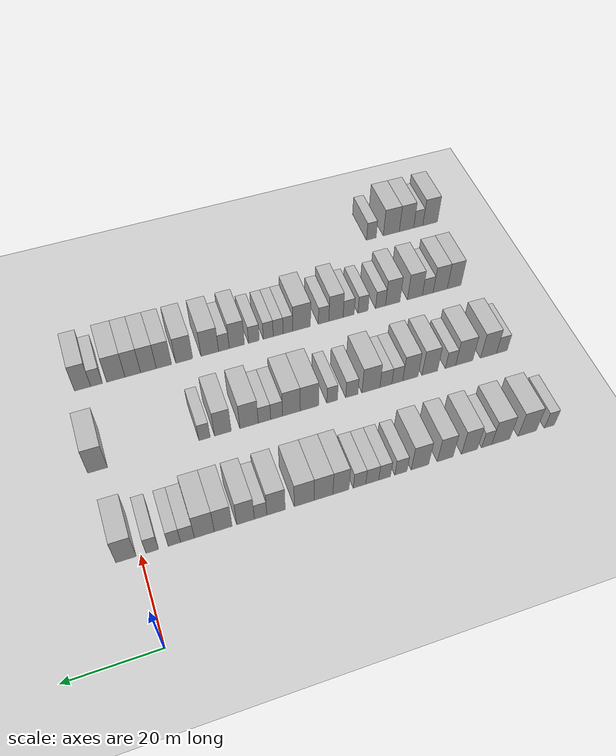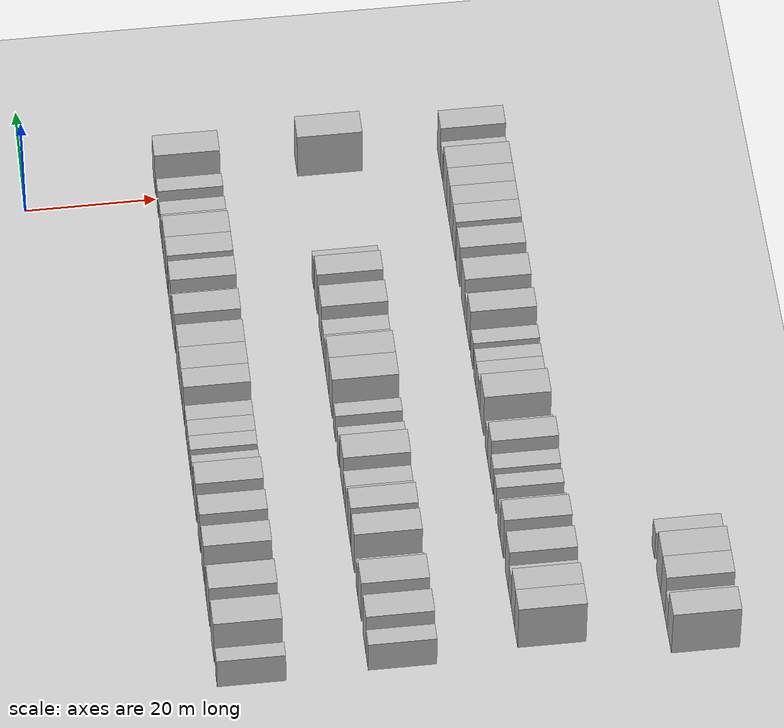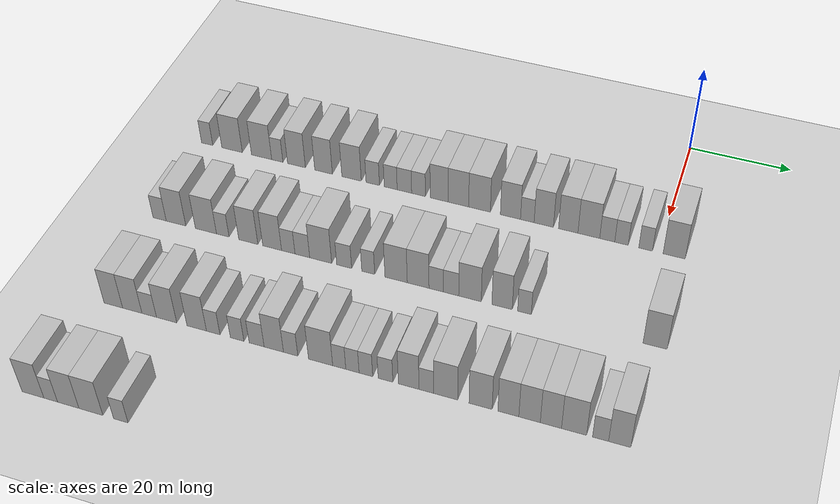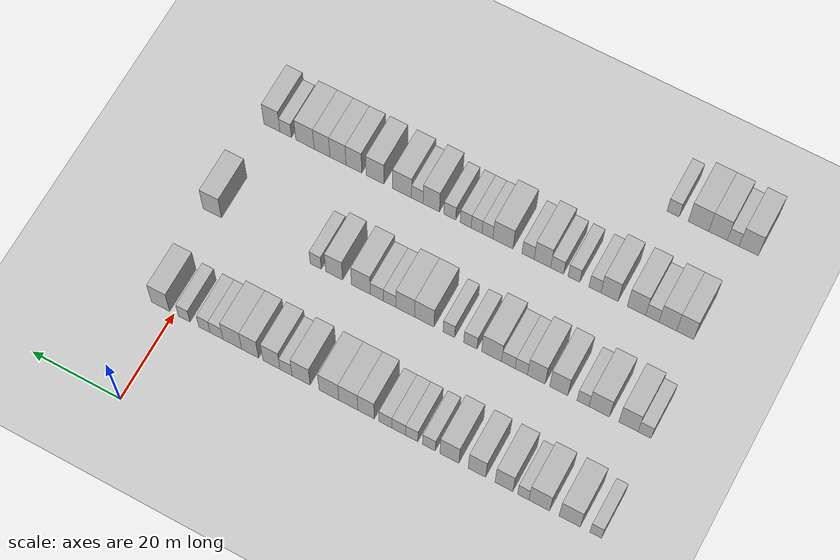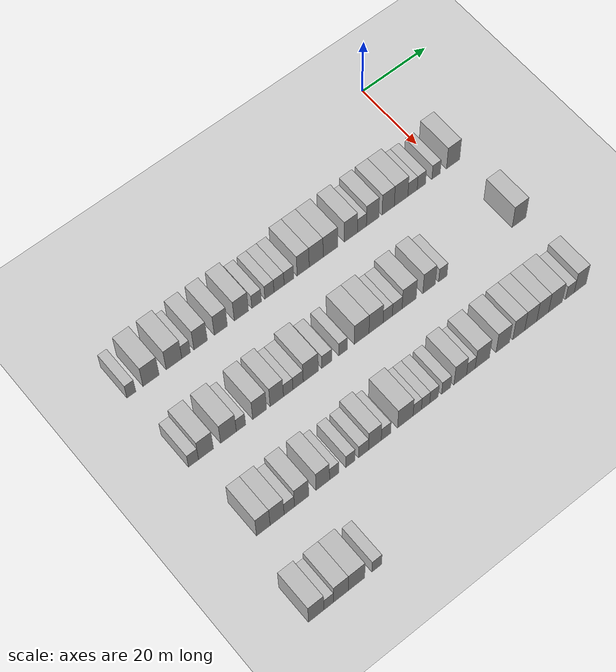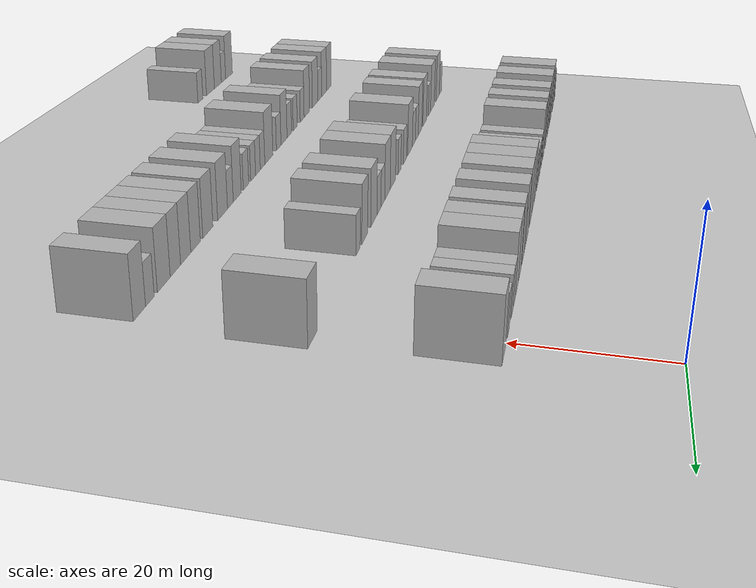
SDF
<sdf version="1.6">
 <world name="default">
  <include><name>ground_plane_1</name><uri>model://HANNAS_ground_plane</uri></include>
  <model name="building_72">
   <static>1</static>
   <pose>25.0000 -92.2614 0 0.000000 0.000000 0.000000</pose>
   <link name="link">
    <pose>0 0 3.00 0 0 0</pose>
    <collision name="collision"><geometry><box><size>10.0000 2.4693 6.0000</size></box></geometry></collision>
    <visual name="visual">
     <cast_shadows>0</cast_shadows>
     <geometry><box><size>10.0000 2.4693 6.0000</size></box></geometry>
     <material>
      <script>
       <uri>model://HANNAS_wall/materials/scripts</uri>
       <uri>model://HANNAS_wall/materials/textures</uri>
       <name>vrc/HANNAS_wall</name>
      </script>
     </material>
    </visual>
   </link>
  </model>
  <model name="building_73">
   <static>1</static>
   <pose>25.0000 -86.7779 0 0.000000 0.000000 0.000000</pose>
   <link name="link">
    <pose>0 0 4.50 0 0 0</pose>
    <collision name="collision"><geometry><box><size>10.0000 4.4978 9.0000</size></box></geometry></collision>
    <visual name="visual">
     <cast_shadows>0</cast_shadows>
     <geometry><box><size>10.0000 4.4978 9.0000</size></box></geometry>
     <material>
      <script>
       <uri>model://HANNAS_wall/materials/scripts</uri>
       <uri>model://HANNAS_wall/materials/textures</uri>
       <name>vrc/HANNAS_wall</name>
      </script>
     </material>
    </visual>
   </link>
  </model>
  <model name="building_74">
   <static>1</static>
   <pose>25.0000 -80.3340 0 0.000000 0.000000 0.000000</pose>
   <link name="link">
    <pose>0 0 4.50 0 0 0</pose>
    <collision name="collision"><geometry><box><size>10.0000 4.3899 9.0000</size></box></geometry></collision>
    <visual name="visual">
     <cast_shadows>0</cast_shadows>
     <geometry><box><size>10.0000 4.3899 9.0000</size></box></geometry>
     <material>
      <script>
       <uri>model://HANNAS_wall/materials/scripts</uri>
       <uri>model://HANNAS_wall/materials/textures</uri>
       <name>vrc/HANNAS_wall</name>
      </script>
     </material>
    </visual>
   </link>
  </model>
  <model name="building_75">
   <static>1</static>
   <pose>25.0000 -76.9279 0 0.000000 0.000000 0.000000</pose>
   <link name="link">
    <pose>0 0 3.00 0 0 0</pose>
    <collision name="collision"><geometry><box><size>10.0000 2.4223 6.0000</size></box></geometry></collision>
    <visual name="visual">
     <cast_shadows>0</cast_shadows>
     <geometry><box><size>10.0000 2.4223 6.0000</size></box></geometry>
     <material>
      <script>
       <uri>model://HANNAS_wall/materials/scripts</uri>
       <uri>model://HANNAS_wall/materials/textures</uri>
       <name>vrc/HANNAS_wall</name>
      </script>
     </material>
    </visual>
   </link>
  </model>
  <model name="building_76">
   <static>1</static>
   <pose>25.0000 -72.8050 0 0.000000 0.000000 0.000000</pose>
   <link name="link">
    <pose>0 0 4.50 0 0 0</pose>
    <collision name="collision"><geometry><box><size>10.0000 3.8236 9.0000</size></box></geometry></collision>
    <visual name="visual">
     <cast_shadows>0</cast_shadows>
     <geometry><box><size>10.0000 3.8236 9.0000</size></box></geometry>
     <material>
      <script>
       <uri>model://HANNAS_wall/materials/scripts</uri>
       <uri>model://HANNAS_wall/materials/textures</uri>
       <name>vrc/HANNAS_wall</name>
      </script>
     </material>
    </visual>
   </link>
  </model>
  <model name="building_77">
   <static>1</static>
   <pose>25.0000 -67.0223 0 0.000000 0.000000 0.000000</pose>
   <link name="link">
    <pose>0 0 4.50 0 0 0</pose>
    <collision name="collision"><geometry><box><size>10.0000 3.7419 9.0000</size></box></geometry></collision>
    <visual name="visual">
     <cast_shadows>0</cast_shadows>
     <geometry><box><size>10.0000 3.7419 9.0000</size></box></geometry>
     <material>
      <script>
       <uri>model://HANNAS_wall/materials/scripts</uri>
       <uri>model://HANNAS_wall/materials/textures</uri>
       <name>vrc/HANNAS_wall</name>
      </script>
     </material>
    </visual>
   </link>
  </model>
  <model name="building_78">
   <static>1</static>
   <pose>25.0000 -61.1075 0 0.000000 0.000000 0.000000</pose>
   <link name="link">
    <pose>0 0 4.50 0 0 0</pose>
    <collision name="collision"><geometry><box><size>10.0000 4.0876 9.0000</size></box></geometry></collision>
    <visual name="visual">
     <cast_shadows>0</cast_shadows>
     <geometry><box><size>10.0000 4.0876 9.0000</size></box></geometry>
     <material>
      <script>
       <uri>model://HANNAS_wall/materials/scripts</uri>
       <uri>model://HANNAS_wall/materials/textures</uri>
       <name>vrc/HANNAS_wall</name>
      </script>
     </material>
    </visual>
   </link>
  </model>
  <model name="building_79">
   <static>1</static>
   <pose>25.0000 -56.6667 0 0.000000 0.000000 0.000000</pose>
   <link name="link">
    <pose>0 0 3.00 0 0 0</pose>
    <collision name="collision"><geometry><box><size>10.0000 2.7940 6.0000</size></box></geometry></collision>
    <visual name="visual">
     <cast_shadows>0</cast_shadows>
     <geometry><box><size>10.0000 2.7940 6.0000</size></box></geometry>
     <material>
      <script>
       <uri>model://HANNAS_wall/materials/scripts</uri>
       <uri>model://HANNAS_wall/materials/textures</uri>
       <name>vrc/HANNAS_wall</name>
      </script>
     </material>
    </visual>
   </link>
  </model>
  <model name="building_80">
   <static>1</static>
   <pose>25.0000 -52.9333 0 0.000000 0.000000 0.000000</pose>
   <link name="link">
    <pose>0 0 3.00 0 0 0</pose>
    <collision name="collision"><geometry><box><size>10.0000 2.6727 6.0000</size></box></geometry></collision>
    <visual name="visual">
     <cast_shadows>0</cast_shadows>
     <geometry><box><size>10.0000 2.6727 6.0000</size></box></geometry>
     <material>
      <script>
       <uri>model://HANNAS_wall/materials/scripts</uri>
       <uri>model://HANNAS_wall/materials/textures</uri>
       <name>vrc/HANNAS_wall</name>
      </script>
     </material>
    </visual>
   </link>
  </model>
  <model name="building_81">
   <static>1</static>
   <pose>25.0000 -50.1034 0 0.000000 0.000000 0.000000</pose>
   <link name="link">
    <pose>0 0 3.00 0 0 0</pose>
    <collision name="collision"><geometry><box><size>10.0000 2.9871 6.0000</size></box></geometry></collision>
    <visual name="visual">
     <cast_shadows>0</cast_shadows>
     <geometry><box><size>10.0000 2.9871 6.0000</size></box></geometry>
     <material>
      <script>
       <uri>model://HANNAS_wall/materials/scripts</uri>
       <uri>model://HANNAS_wall/materials/textures</uri>
       <name>vrc/HANNAS_wall</name>
      </script>
     </material>
    </visual>
   </link>
  </model>
  <model name="building_82">
   <static>1</static>
   <pose>25.0000 -47.1950 0 0.000000 0.000000 0.000000</pose>
   <link name="link">
    <pose>0 0 3.00 0 0 0</pose>
    <collision name="collision"><geometry><box><size>10.0000 2.8297 6.0000</size></box></geometry></collision>
    <visual name="visual">
     <cast_shadows>0</cast_shadows>
     <geometry><box><size>10.0000 2.8297 6.0000</size></box></geometry>
     <material>
      <script>
       <uri>model://HANNAS_wall/materials/scripts</uri>
       <uri>model://HANNAS_wall/materials/textures</uri>
       <name>vrc/HANNAS_wall</name>
      </script>
     </material>
    </visual>
   </link>
  </model>
  <model name="building_83">
   <static>1</static>
   <pose>25.0000 -42.9795 0 0.000000 0.000000 0.000000</pose>
   <link name="link">
    <pose>0 0 4.50 0 0 0</pose>
    <collision name="collision"><geometry><box><size>10.0000 3.6011 9.0000</size></box></geometry></collision>
    <visual name="visual">
     <cast_shadows>0</cast_shadows>
     <geometry><box><size>10.0000 3.6011 9.0000</size></box></geometry>
     <material>
      <script>
       <uri>model://HANNAS_wall/materials/scripts</uri>
       <uri>model://HANNAS_wall/materials/textures</uri>
       <name>vrc/HANNAS_wall</name>
      </script>
     </material>
    </visual>
   </link>
  </model>
  <model name="building_84">
   <static>1</static>
   <pose>25.0000 -39.0826 0 0.000000 0.000000 0.000000</pose>
   <link name="link">
    <pose>0 0 4.50 0 0 0</pose>
    <collision name="collision"><geometry><box><size>10.0000 4.1928 9.0000</size></box></geometry></collision>
    <visual name="visual">
     <cast_shadows>0</cast_shadows>
     <geometry><box><size>10.0000 4.1928 9.0000</size></box></geometry>
     <material>
      <script>
       <uri>model://HANNAS_wall/materials/scripts</uri>
       <uri>model://HANNAS_wall/materials/textures</uri>
       <name>vrc/HANNAS_wall</name>
      </script>
     </material>
    </visual>
   </link>
  </model>
  <model name="building_85">
   <static>1</static>
   <pose>25.0000 -34.8034 0 0.000000 0.000000 0.000000</pose>
   <link name="link">
    <pose>0 0 4.50 0 0 0</pose>
    <collision name="collision"><geometry><box><size>10.0000 4.3656 9.0000</size></box></geometry></collision>
    <visual name="visual">
     <cast_shadows>0</cast_shadows>
     <geometry><box><size>10.0000 4.3656 9.0000</size></box></geometry>
     <material>
      <script>
       <uri>model://HANNAS_wall/materials/scripts</uri>
       <uri>model://HANNAS_wall/materials/textures</uri>
       <name>vrc/HANNAS_wall</name>
      </script>
     </material>
    </visual>
   </link>
  </model>
  <model name="building_86">
   <static>1</static>
   <pose>25.0000 -28.6227 0 0.000000 0.000000 0.000000</pose>
   <link name="link">
    <pose>0 0 4.50 0 0 0</pose>
    <collision name="collision"><geometry><box><size>10.0000 3.9956 9.0000</size></box></geometry></collision>
    <visual name="visual">
     <cast_shadows>0</cast_shadows>
     <geometry><box><size>10.0000 3.9956 9.0000</size></box></geometry>
     <material>
      <script>
       <uri>model://HANNAS_wall/materials/scripts</uri>
       <uri>model://HANNAS_wall/materials/textures</uri>
       <name>vrc/HANNAS_wall</name>
      </script>
     </material>
    </visual>
   </link>
  </model>
  <model name="building_87">
   <static>1</static>
   <pose>25.0000 -25.2805 0 0.000000 0.000000 0.000000</pose>
   <link name="link">
    <pose>0 0 3.00 0 0 0</pose>
    <collision name="collision"><geometry><box><size>10.0000 2.6889 6.0000</size></box></geometry></collision>
    <visual name="visual">
     <cast_shadows>0</cast_shadows>
     <geometry><box><size>10.0000 2.6889 6.0000</size></box></geometry>
     <material>
      <script>
       <uri>model://HANNAS_wall/materials/scripts</uri>
       <uri>model://HANNAS_wall/materials/textures</uri>
       <name>vrc/HANNAS_wall</name>
      </script>
     </material>
    </visual>
   </link>
  </model>
  <model name="building_88">
   <static>1</static>
   <pose>25.0000 -22.0371 0 0.000000 0.000000 0.000000</pose>
   <link name="link">
    <pose>0 0 4.50 0 0 0</pose>
    <collision name="collision"><geometry><box><size>10.0000 3.7979 9.0000</size></box></geometry></collision>
    <visual name="visual">
     <cast_shadows>0</cast_shadows>
     <geometry><box><size>10.0000 3.7979 9.0000</size></box></geometry>
     <material>
      <script>
       <uri>model://HANNAS_wall/materials/scripts</uri>
       <uri>model://HANNAS_wall/materials/textures</uri>
       <name>vrc/HANNAS_wall</name>
      </script>
     </material>
    </visual>
   </link>
  </model>
  <model name="building_89">
   <static>1</static>
   <pose>25.0000 -17.2486 0 0.000000 0.000000 0.000000</pose>
   <link name="link">
    <pose>0 0 4.50 0 0 0</pose>
    <collision name="collision"><geometry><box><size>10.0000 3.7790 9.0000</size></box></geometry></collision>
    <visual name="visual">
     <cast_shadows>0</cast_shadows>
     <geometry><box><size>10.0000 3.7790 9.0000</size></box></geometry>
     <material>
      <script>
       <uri>model://HANNAS_wall/materials/scripts</uri>
       <uri>model://HANNAS_wall/materials/textures</uri>
       <name>vrc/HANNAS_wall</name>
      </script>
     </material>
    </visual>
   </link>
  </model>
  <model name="building_90">
   <static>1</static>
   <pose>25.0000 -13.2496 0 0.000000 0.000000 0.000000</pose>
   <link name="link">
    <pose>0 0 4.50 0 0 0</pose>
    <collision name="collision"><geometry><box><size>10.0000 4.2191 9.0000</size></box></geometry></collision>
    <visual name="visual">
     <cast_shadows>0</cast_shadows>
     <geometry><box><size>10.0000 4.2191 9.0000</size></box></geometry>
     <material>
      <script>
       <uri>model://HANNAS_wall/materials/scripts</uri>
       <uri>model://HANNAS_wall/materials/textures</uri>
       <name>vrc/HANNAS_wall</name>
      </script>
     </material>
    </visual>
   </link>
  </model>
  <model name="building_91">
   <static>1</static>
   <pose>25.0000 -9.6932 0 0.000000 0.000000 0.000000</pose>
   <link name="link">
    <pose>0 0 3.00 0 0 0</pose>
    <collision name="collision"><geometry><box><size>10.0000 2.8937 6.0000</size></box></geometry></collision>
    <visual name="visual">
     <cast_shadows>0</cast_shadows>
     <geometry><box><size>10.0000 2.8937 6.0000</size></box></geometry>
     <material>
      <script>
       <uri>model://HANNAS_wall/materials/scripts</uri>
       <uri>model://HANNAS_wall/materials/textures</uri>
       <name>vrc/HANNAS_wall</name>
      </script>
     </material>
    </visual>
   </link>
  </model>
  <model name="building_92">
   <static>1</static>
   <pose>25.0000 -6.9539 0 0.000000 0.000000 0.000000</pose>
   <link name="link">
    <pose>0 0 3.00 0 0 0</pose>
    <collision name="collision"><geometry><box><size>10.0000 2.5847 6.0000</size></box></geometry></collision>
    <visual name="visual">
     <cast_shadows>0</cast_shadows>
     <geometry><box><size>10.0000 2.5847 6.0000</size></box></geometry>
     <material>
      <script>
       <uri>model://HANNAS_wall/materials/scripts</uri>
       <uri>model://HANNAS_wall/materials/textures</uri>
       <name>vrc/HANNAS_wall</name>
      </script>
     </material>
    </visual>
   </link>
  </model>
  <model name="building_93">
   <static>1</static>
   <pose>25.0000 -2.3545 0 0.000000 0.000000 0.000000</pose>
   <link name="link">
    <pose>0 0 3.00 0 0 0</pose>
    <collision name="collision"><geometry><box><size>10.0000 2.6142 6.0000</size></box></geometry></collision>
    <visual name="visual">
     <cast_shadows>0</cast_shadows>
     <geometry><box><size>10.0000 2.6142 6.0000</size></box></geometry>
     <material>
      <script>
       <uri>model://HANNAS_wall/materials/scripts</uri>
       <uri>model://HANNAS_wall/materials/textures</uri>
       <name>vrc/HANNAS_wall</name>
      </script>
     </material>
    </visual>
   </link>
  </model>
  <model name="building_94">
   <static>1</static>
   <pose>25.0000 3.0317 0 0.000000 0.000000 0.000000</pose>
   <link name="link">
    <pose>0 0 4.50 0 0 0</pose>
    <collision name="collision"><geometry><box><size>10.0000 4.1583 9.0000</size></box></geometry></collision>
    <visual name="visual">
     <cast_shadows>0</cast_shadows>
     <geometry><box><size>10.0000 4.1583 9.0000</size></box></geometry>
     <material>
      <script>
       <uri>model://HANNAS_wall/materials/scripts</uri>
       <uri>model://HANNAS_wall/materials/textures</uri>
       <name>vrc/HANNAS_wall</name>
      </script>
     </material>
    </visual>
   </link>
  </model>
  <model name="building_269">
   <static>1</static>
   <pose>47.0000 -91.6093 0 0.000000 0.000000 0.000000</pose>
   <link name="link">
    <pose>0 0 3.00 0 0 0</pose>
    <collision name="collision"><geometry><box><size>10.0000 2.7777 6.0000</size></box></geometry></collision>
    <visual name="visual">
     <cast_shadows>0</cast_shadows>
     <geometry><box><size>10.0000 2.7777 6.0000</size></box></geometry>
     <material>
      <script>
       <uri>model://HANNAS_wall/materials/scripts</uri>
       <uri>model://HANNAS_wall/materials/textures</uri>
       <name>vrc/HANNAS_wall</name>
      </script>
     </material>
    </visual>
   </link>
  </model>
  <model name="building_270">
   <static>1</static>
   <pose>47.0000 -88.1638 0 0.000000 0.000000 0.000000</pose>
   <link name="link">
    <pose>0 0 4.50 0 0 0</pose>
    <collision name="collision"><geometry><box><size>10.0000 4.1133 9.0000</size></box></geometry></collision>
    <visual name="visual">
     <cast_shadows>0</cast_shadows>
     <geometry><box><size>10.0000 4.1133 9.0000</size></box></geometry>
     <material>
      <script>
       <uri>model://HANNAS_wall/materials/scripts</uri>
       <uri>model://HANNAS_wall/materials/textures</uri>
       <name>vrc/HANNAS_wall</name>
      </script>
     </material>
    </visual>
   </link>
  </model>
  <model name="building_271">
   <static>1</static>
   <pose>47.0000 -81.9119 0 0.000000 0.000000 0.000000</pose>
   <link name="link">
    <pose>0 0 4.50 0 0 0</pose>
    <collision name="collision"><geometry><box><size>10.0000 4.3905 9.0000</size></box></geometry></collision>
    <visual name="visual">
     <cast_shadows>0</cast_shadows>
     <geometry><box><size>10.0000 4.3905 9.0000</size></box></geometry>
     <material>
      <script>
       <uri>model://HANNAS_wall/materials/scripts</uri>
       <uri>model://HANNAS_wall/materials/textures</uri>
       <name>vrc/HANNAS_wall</name>
      </script>
     </material>
    </visual>
   </link>
  </model>
  <model name="building_272">
   <static>1</static>
   <pose>47.0000 -78.4185 0 0.000000 0.000000 0.000000</pose>
   <link name="link">
    <pose>0 0 3.00 0 0 0</pose>
    <collision name="collision"><geometry><box><size>10.0000 2.5963 6.0000</size></box></geometry></collision>
    <visual name="visual">
     <cast_shadows>0</cast_shadows>
     <geometry><box><size>10.0000 2.5963 6.0000</size></box></geometry>
     <material>
      <script>
       <uri>model://HANNAS_wall/materials/scripts</uri>
       <uri>model://HANNAS_wall/materials/textures</uri>
       <name>vrc/HANNAS_wall</name>
      </script>
     </material>
    </visual>
   </link>
  </model>
  <model name="building_273">
   <static>1</static>
   <pose>47.0000 -73.1669 0 0.000000 0.000000 0.000000</pose>
   <link name="link">
    <pose>0 0 4.50 0 0 0</pose>
    <collision name="collision"><geometry><box><size>10.0000 3.9067 9.0000</size></box></geometry></collision>
    <visual name="visual">
     <cast_shadows>0</cast_shadows>
     <geometry><box><size>10.0000 3.9067 9.0000</size></box></geometry>
     <material>
      <script>
       <uri>model://HANNAS_wall/materials/scripts</uri>
       <uri>model://HANNAS_wall/materials/textures</uri>
       <name>vrc/HANNAS_wall</name>
      </script>
     </material>
    </visual>
   </link>
  </model>
  <model name="building_274">
   <static>1</static>
   <pose>47.0000 -68.3071 0 0.000000 0.000000 0.000000</pose>
   <link name="link">
    <pose>0 0 4.50 0 0 0</pose>
    <collision name="collision"><geometry><box><size>10.0000 3.8128 9.0000</size></box></geometry></collision>
    <visual name="visual">
     <cast_shadows>0</cast_shadows>
     <geometry><box><size>10.0000 3.8128 9.0000</size></box></geometry>
     <material>
      <script>
       <uri>model://HANNAS_wall/materials/scripts</uri>
       <uri>model://HANNAS_wall/materials/textures</uri>
       <name>vrc/HANNAS_wall</name>
      </script>
     </material>
    </visual>
   </link>
  </model>
  <model name="building_275">
   <static>1</static>
   <pose>47.0000 -65.0478 0 0.000000 0.000000 0.000000</pose>
   <link name="link">
    <pose>0 0 3.00 0 0 0</pose>
    <collision name="collision"><geometry><box><size>10.0000 2.7058 6.0000</size></box></geometry></collision>
    <visual name="visual">
     <cast_shadows>0</cast_shadows>
     <geometry><box><size>10.0000 2.7058 6.0000</size></box></geometry>
     <material>
      <script>
       <uri>model://HANNAS_wall/materials/scripts</uri>
       <uri>model://HANNAS_wall/materials/textures</uri>
       <name>vrc/HANNAS_wall</name>
      </script>
     </material>
    </visual>
   </link>
  </model>
  <model name="building_276">
   <static>1</static>
   <pose>47.0000 -62.2211 0 0.000000 0.000000 0.000000</pose>
   <link name="link">
    <pose>0 0 3.00 0 0 0</pose>
    <collision name="collision"><geometry><box><size>10.0000 2.9476 6.0000</size></box></geometry></collision>
    <visual name="visual">
     <cast_shadows>0</cast_shadows>
     <geometry><box><size>10.0000 2.9476 6.0000</size></box></geometry>
     <material>
      <script>
       <uri>model://HANNAS_wall/materials/scripts</uri>
       <uri>model://HANNAS_wall/materials/textures</uri>
       <name>vrc/HANNAS_wall</name>
      </script>
     </material>
    </visual>
   </link>
  </model>
  <model name="building_277">
   <static>1</static>
   <pose>47.0000 -58.5557 0 0.000000 0.000000 0.000000</pose>
   <link name="link">
    <pose>0 0 4.50 0 0 0</pose>
    <collision name="collision"><geometry><box><size>10.0000 4.3833 9.0000</size></box></geometry></collision>
    <visual name="visual">
     <cast_shadows>0</cast_shadows>
     <geometry><box><size>10.0000 4.3833 9.0000</size></box></geometry>
     <material>
      <script>
       <uri>model://HANNAS_wall/materials/scripts</uri>
       <uri>model://HANNAS_wall/materials/textures</uri>
       <name>vrc/HANNAS_wall</name>
      </script>
     </material>
    </visual>
   </link>
  </model>
  <model name="building_278">
   <static>1</static>
   <pose>47.0000 -53.8904 0 0.000000 0.000000 0.000000</pose>
   <link name="link">
    <pose>0 0 3.00 0 0 0</pose>
    <collision name="collision"><geometry><box><size>10.0000 2.9473 6.0000</size></box></geometry></collision>
    <visual name="visual">
     <cast_shadows>0</cast_shadows>
     <geometry><box><size>10.0000 2.9473 6.0000</size></box></geometry>
     <material>
      <script>
       <uri>model://HANNAS_wall/materials/scripts</uri>
       <uri>model://HANNAS_wall/materials/textures</uri>
       <name>vrc/HANNAS_wall</name>
      </script>
     </material>
    </visual>
   </link>
  </model>
  <model name="building_279">
   <static>1</static>
   <pose>47.0000 -49.1477 0 0.000000 0.000000 0.000000</pose>
   <link name="link">
    <pose>0 0 3.00 0 0 0</pose>
    <collision name="collision"><geometry><box><size>10.0000 2.5381 6.0000</size></box></geometry></collision>
    <visual name="visual">
     <cast_shadows>0</cast_shadows>
     <geometry><box><size>10.0000 2.5381 6.0000</size></box></geometry>
     <material>
      <script>
       <uri>model://HANNAS_wall/materials/scripts</uri>
       <uri>model://HANNAS_wall/materials/textures</uri>
       <name>vrc/HANNAS_wall</name>
      </script>
     </material>
    </visual>
   </link>
  </model>
  <model name="building_280">
   <static>1</static>
   <pose>47.0000 -43.7154 0 0.000000 0.000000 0.000000</pose>
   <link name="link">
    <pose>0 0 4.50 0 0 0</pose>
    <collision name="collision"><geometry><box><size>10.0000 4.3265 9.0000</size></box></geometry></collision>
    <visual name="visual">
     <cast_shadows>0</cast_shadows>
     <geometry><box><size>10.0000 4.3265 9.0000</size></box></geometry>
     <material>
      <script>
       <uri>model://HANNAS_wall/materials/scripts</uri>
       <uri>model://HANNAS_wall/materials/textures</uri>
       <name>vrc/HANNAS_wall</name>
      </script>
     </material>
    </visual>
   </link>
  </model>
  <model name="building_281">
   <static>1</static>
   <pose>47.0000 -39.4651 0 0.000000 0.000000 0.000000</pose>
   <link name="link">
    <pose>0 0 4.50 0 0 0</pose>
    <collision name="collision"><geometry><box><size>10.0000 4.1739 9.0000</size></box></geometry></collision>
    <visual name="visual">
     <cast_shadows>0</cast_shadows>
     <geometry><box><size>10.0000 4.1739 9.0000</size></box></geometry>
     <material>
      <script>
       <uri>model://HANNAS_wall/materials/scripts</uri>
       <uri>model://HANNAS_wall/materials/textures</uri>
       <name>vrc/HANNAS_wall</name>
      </script>
     </material>
    </visual>
   </link>
  </model>
  <model name="building_282">
   <static>1</static>
   <pose>47.0000 -35.9891 0 0.000000 0.000000 0.000000</pose>
   <link name="link">
    <pose>0 0 3.00 0 0 0</pose>
    <collision name="collision"><geometry><box><size>10.0000 2.7782 6.0000</size></box></geometry></collision>
    <visual name="visual">
     <cast_shadows>0</cast_shadows>
     <geometry><box><size>10.0000 2.7782 6.0000</size></box></geometry>
     <material>
      <script>
       <uri>model://HANNAS_wall/materials/scripts</uri>
       <uri>model://HANNAS_wall/materials/textures</uri>
       <name>vrc/HANNAS_wall</name>
      </script>
     </material>
    </visual>
   </link>
  </model>
  <model name="building_283">
   <static>1</static>
   <pose>47.0000 -33.1477 0 0.000000 0.000000 0.000000</pose>
   <link name="link">
    <pose>0 0 3.00 0 0 0</pose>
    <collision name="collision"><geometry><box><size>10.0000 2.9046 6.0000</size></box></geometry></collision>
    <visual name="visual">
     <cast_shadows>0</cast_shadows>
     <geometry><box><size>10.0000 2.9046 6.0000</size></box></geometry>
     <material>
      <script>
       <uri>model://HANNAS_wall/materials/scripts</uri>
       <uri>model://HANNAS_wall/materials/textures</uri>
       <name>vrc/HANNAS_wall</name>
      </script>
     </material>
    </visual>
   </link>
  </model>
  <model name="building_284">
   <static>1</static>
   <pose>47.0000 -29.5677 0 0.000000 0.000000 0.000000</pose>
   <link name="link">
    <pose>0 0 4.50 0 0 0</pose>
    <collision name="collision"><geometry><box><size>10.0000 4.2554 9.0000</size></box></geometry></collision>
    <visual name="visual">
     <cast_shadows>0</cast_shadows>
     <geometry><box><size>10.0000 4.2554 9.0000</size></box></geometry>
     <material>
      <script>
       <uri>model://HANNAS_wall/materials/scripts</uri>
       <uri>model://HANNAS_wall/materials/textures</uri>
       <name>vrc/HANNAS_wall</name>
      </script>
     </material>
    </visual>
   </link>
  </model>
  <model name="building_285">
   <static>1</static>
   <pose>47.0000 -23.5352 0 0.000000 0.000000 0.000000</pose>
   <link name="link">
    <pose>0 0 4.50 0 0 0</pose>
    <collision name="collision"><geometry><box><size>10.0000 3.8096 9.0000</size></box></geometry></collision>
    <visual name="visual">
     <cast_shadows>0</cast_shadows>
     <geometry><box><size>10.0000 3.8096 9.0000</size></box></geometry>
     <material>
      <script>
       <uri>model://HANNAS_wall/materials/scripts</uri>
       <uri>model://HANNAS_wall/materials/textures</uri>
       <name>vrc/HANNAS_wall</name>
      </script>
     </material>
    </visual>
   </link>
  </model>
  <model name="building_286">
   <static>1</static>
   <pose>47.0000 -19.3612 0 0.000000 0.000000 0.000000</pose>
   <link name="link">
    <pose>0 0 3.00 0 0 0</pose>
    <collision name="collision"><geometry><box><size>10.0000 2.5384 6.0000</size></box></geometry></collision>
    <visual name="visual">
     <cast_shadows>0</cast_shadows>
     <geometry><box><size>10.0000 2.5384 6.0000</size></box></geometry>
     <material>
      <script>
       <uri>model://HANNAS_wall/materials/scripts</uri>
       <uri>model://HANNAS_wall/materials/textures</uri>
       <name>vrc/HANNAS_wall</name>
      </script>
     </material>
    </visual>
   </link>
  </model>
  <model name="building_287">
   <static>1</static>
   <pose>47.0000 4.3462 0 0.000000 0.000000 0.000000</pose>
   <link name="link">
    <pose>0 0 4.50 0 0 0</pose>
    <collision name="collision"><geometry><box><size>10.0000 4.2921 9.0000</size></box></geometry></collision>
    <visual name="visual">
     <cast_shadows>0</cast_shadows>
     <geometry><box><size>10.0000 4.2921 9.0000</size></box></geometry>
     <material>
      <script>
       <uri>model://HANNAS_wall/materials/scripts</uri>
       <uri>model://HANNAS_wall/materials/textures</uri>
       <name>vrc/HANNAS_wall</name>
      </script>
     </material>
    </visual>
   </link>
  </model>
  <model name="building_458">
   <static>1</static>
   <pose>69.0000 -89.5413 0 0.000000 0.000000 0.000000</pose>
   <link name="link">
    <pose>0 0 4.50 0 0 0</pose>
    <collision name="collision"><geometry><box><size>10.0000 3.7164 9.0000</size></box></geometry></collision>
    <visual name="visual">
     <cast_shadows>0</cast_shadows>
     <geometry><box><size>10.0000 3.7164 9.0000</size></box></geometry>
     <material>
      <script>
       <uri>model://HANNAS_wall/materials/scripts</uri>
       <uri>model://HANNAS_wall/materials/textures</uri>
       <name>vrc/HANNAS_wall</name>
      </script>
     </material>
    </visual>
   </link>
  </model>
  <model name="building_459">
   <static>1</static>
   <pose>69.0000 -85.7581 0 0.000000 0.000000 0.000000</pose>
   <link name="link">
    <pose>0 0 4.50 0 0 0</pose>
    <collision name="collision"><geometry><box><size>10.0000 3.8500 9.0000</size></box></geometry></collision>
    <visual name="visual">
     <cast_shadows>0</cast_shadows>
     <geometry><box><size>10.0000 3.8500 9.0000</size></box></geometry>
     <material>
      <script>
       <uri>model://HANNAS_wall/materials/scripts</uri>
       <uri>model://HANNAS_wall/materials/textures</uri>
       <name>vrc/HANNAS_wall</name>
      </script>
     </material>
    </visual>
   </link>
  </model>
  <model name="building_460">
   <static>1</static>
   <pose>69.0000 -82.3969 0 0.000000 0.000000 0.000000</pose>
   <link name="link">
    <pose>0 0 3.00 0 0 0</pose>
    <collision name="collision"><geometry><box><size>10.0000 2.8724 6.0000</size></box></geometry></collision>
    <visual name="visual">
     <cast_shadows>0</cast_shadows>
     <geometry><box><size>10.0000 2.8724 6.0000</size></box></geometry>
     <material>
      <script>
       <uri>model://HANNAS_wall/materials/scripts</uri>
       <uri>model://HANNAS_wall/materials/textures</uri>
       <name>vrc/HANNAS_wall</name>
      </script>
     </material>
    </visual>
   </link>
  </model>
  <model name="building_461">
   <static>1</static>
   <pose>69.0000 -78.9640 0 0.000000 0.000000 0.000000</pose>
   <link name="link">
    <pose>0 0 4.50 0 0 0</pose>
    <collision name="collision"><geometry><box><size>10.0000 3.9935 9.0000</size></box></geometry></collision>
    <visual name="visual">
     <cast_shadows>0</cast_shadows>
     <geometry><box><size>10.0000 3.9935 9.0000</size></box></geometry>
     <material>
      <script>
       <uri>model://HANNAS_wall/materials/scripts</uri>
       <uri>model://HANNAS_wall/materials/textures</uri>
       <name>vrc/HANNAS_wall</name>
      </script>
     </material>
    </visual>
   </link>
  </model>
  <model name="building_462">
   <static>1</static>
   <pose>69.0000 -73.0646 0 0.000000 0.000000 0.000000</pose>
   <link name="link">
    <pose>0 0 4.50 0 0 0</pose>
    <collision name="collision"><geometry><box><size>10.0000 3.8053 9.0000</size></box></geometry></collision>
    <visual name="visual">
     <cast_shadows>0</cast_shadows>
     <geometry><box><size>10.0000 3.8053 9.0000</size></box></geometry>
     <material>
      <script>
       <uri>model://HANNAS_wall/materials/scripts</uri>
       <uri>model://HANNAS_wall/materials/textures</uri>
       <name>vrc/HANNAS_wall</name>
      </script>
     </material>
    </visual>
   </link>
  </model>
  <model name="building_463">
   <static>1</static>
   <pose>69.0000 -69.8558 0 0.000000 0.000000 0.000000</pose>
   <link name="link">
    <pose>0 0 3.00 0 0 0</pose>
    <collision name="collision"><geometry><box><size>10.0000 2.6123 6.0000</size></box></geometry></collision>
    <visual name="visual">
     <cast_shadows>0</cast_shadows>
     <geometry><box><size>10.0000 2.6123 6.0000</size></box></geometry>
     <material>
      <script>
       <uri>model://HANNAS_wall/materials/scripts</uri>
       <uri>model://HANNAS_wall/materials/textures</uri>
       <name>vrc/HANNAS_wall</name>
      </script>
     </material>
    </visual>
   </link>
  </model>
  <model name="building_464">
   <static>1</static>
   <pose>69.0000 -65.2466 0 0.000000 0.000000 0.000000</pose>
   <link name="link">
    <pose>0 0 3.00 0 0 0</pose>
    <collision name="collision"><geometry><box><size>10.0000 2.6060 6.0000</size></box></geometry></collision>
    <visual name="visual">
     <cast_shadows>0</cast_shadows>
     <geometry><box><size>10.0000 2.6060 6.0000</size></box></geometry>
     <material>
      <script>
       <uri>model://HANNAS_wall/materials/scripts</uri>
       <uri>model://HANNAS_wall/materials/textures</uri>
       <name>vrc/HANNAS_wall</name>
      </script>
     </material>
    </visual>
   </link>
  </model>
  <model name="building_465">
   <static>1</static>
   <pose>69.0000 -61.5190 0 0.000000 0.000000 0.000000</pose>
   <link name="link">
    <pose>0 0 3.00 0 0 0</pose>
    <collision name="collision"><geometry><box><size>10.0000 2.8493 6.0000</size></box></geometry></collision>
    <visual name="visual">
     <cast_shadows>0</cast_shadows>
     <geometry><box><size>10.0000 2.8493 6.0000</size></box></geometry>
     <material>
      <script>
       <uri>model://HANNAS_wall/materials/scripts</uri>
       <uri>model://HANNAS_wall/materials/textures</uri>
       <name>vrc/HANNAS_wall</name>
      </script>
     </material>
    </visual>
   </link>
  </model>
  <model name="building_466">
   <static>1</static>
   <pose>69.0000 -58.2632 0 0.000000 0.000000 0.000000</pose>
   <link name="link">
    <pose>0 0 4.50 0 0 0</pose>
    <collision name="collision"><geometry><box><size>10.0000 3.6623 9.0000</size></box></geometry></collision>
    <visual name="visual">
     <cast_shadows>0</cast_shadows>
     <geometry><box><size>10.0000 3.6623 9.0000</size></box></geometry>
     <material>
      <script>
       <uri>model://HANNAS_wall/materials/scripts</uri>
       <uri>model://HANNAS_wall/materials/textures</uri>
       <name>vrc/HANNAS_wall</name>
      </script>
     </material>
    </visual>
   </link>
  </model>
  <model name="building_467">
   <static>1</static>
   <pose>69.0000 -55.0818 0 0.000000 0.000000 0.000000</pose>
   <link name="link">
    <pose>0 0 3.00 0 0 0</pose>
    <collision name="collision"><geometry><box><size>10.0000 2.7007 6.0000</size></box></geometry></collision>
    <visual name="visual">
     <cast_shadows>0</cast_shadows>
     <geometry><box><size>10.0000 2.7007 6.0000</size></box></geometry>
     <material>
      <script>
       <uri>model://HANNAS_wall/materials/scripts</uri>
       <uri>model://HANNAS_wall/materials/textures</uri>
       <name>vrc/HANNAS_wall</name>
      </script>
     </material>
    </visual>
   </link>
  </model>
  <model name="building_468">
   <static>1</static>
   <pose>69.0000 -49.4844 0 0.000000 0.000000 0.000000</pose>
   <link name="link">
    <pose>0 0 4.50 0 0 0</pose>
    <collision name="collision"><geometry><box><size>10.0000 4.4941 9.0000</size></box></geometry></collision>
    <visual name="visual">
     <cast_shadows>0</cast_shadows>
     <geometry><box><size>10.0000 4.4941 9.0000</size></box></geometry>
     <material>
      <script>
       <uri>model://HANNAS_wall/materials/scripts</uri>
       <uri>model://HANNAS_wall/materials/textures</uri>
       <name>vrc/HANNAS_wall</name>
      </script>
     </material>
    </visual>
   </link>
  </model>
  <model name="building_469">
   <static>1</static>
   <pose>69.0000 -46.0236 0 0.000000 0.000000 0.000000</pose>
   <link name="link">
    <pose>0 0 3.00 0 0 0</pose>
    <collision name="collision"><geometry><box><size>10.0000 2.4275 6.0000</size></box></geometry></collision>
    <visual name="visual">
     <cast_shadows>0</cast_shadows>
     <geometry><box><size>10.0000 2.4275 6.0000</size></box></geometry>
     <material>
      <script>
       <uri>model://HANNAS_wall/materials/scripts</uri>
       <uri>model://HANNAS_wall/materials/textures</uri>
       <name>vrc/HANNAS_wall</name>
      </script>
     </material>
    </visual>
   </link>
  </model>
  <model name="building_470">
   <static>1</static>
   <pose>69.0000 -43.5837 0 0.000000 0.000000 0.000000</pose>
   <link name="link">
    <pose>0 0 3.00 0 0 0</pose>
    <collision name="collision"><geometry><box><size>10.0000 2.4523 6.0000</size></box></geometry></collision>
    <visual name="visual">
     <cast_shadows>0</cast_shadows>
     <geometry><box><size>10.0000 2.4523 6.0000</size></box></geometry>
     <material>
      <script>
       <uri>model://HANNAS_wall/materials/scripts</uri>
       <uri>model://HANNAS_wall/materials/textures</uri>
       <name>vrc/HANNAS_wall</name>
      </script>
     </material>
    </visual>
   </link>
  </model>
  <model name="building_471">
   <static>1</static>
   <pose>69.0000 -41.1151 0 0.000000 0.000000 0.000000</pose>
   <link name="link">
    <pose>0 0 3.00 0 0 0</pose>
    <collision name="collision"><geometry><box><size>10.0000 2.4849 6.0000</size></box></geometry></collision>
    <visual name="visual">
     <cast_shadows>0</cast_shadows>
     <geometry><box><size>10.0000 2.4849 6.0000</size></box></geometry>
     <material>
      <script>
       <uri>model://HANNAS_wall/materials/scripts</uri>
       <uri>model://HANNAS_wall/materials/textures</uri>
       <name>vrc/HANNAS_wall</name>
      </script>
     </material>
    </visual>
   </link>
  </model>
  <model name="building_472">
   <static>1</static>
   <pose>69.0000 -37.5360 0 0.000000 0.000000 0.000000</pose>
   <link name="link">
    <pose>0 0 3.00 0 0 0</pose>
    <collision name="collision"><geometry><box><size>10.0000 2.6733 6.0000</size></box></geometry></collision>
    <visual name="visual">
     <cast_shadows>0</cast_shadows>
     <geometry><box><size>10.0000 2.6733 6.0000</size></box></geometry>
     <material>
      <script>
       <uri>model://HANNAS_wall/materials/scripts</uri>
       <uri>model://HANNAS_wall/materials/textures</uri>
       <name>vrc/HANNAS_wall</name>
      </script>
     </material>
    </visual>
   </link>
  </model>
  <model name="building_473">
   <static>1</static>
   <pose>69.0000 -33.3359 0 0.000000 0.000000 0.000000</pose>
   <link name="link">
    <pose>0 0 4.50 0 0 0</pose>
    <collision name="collision"><geometry><box><size>10.0000 3.7267 9.0000</size></box></geometry></collision>
    <visual name="visual">
     <cast_shadows>0</cast_shadows>
     <geometry><box><size>10.0000 3.7267 9.0000</size></box></geometry>
     <material>
      <script>
       <uri>model://HANNAS_wall/materials/scripts</uri>
       <uri>model://HANNAS_wall/materials/textures</uri>
       <name>vrc/HANNAS_wall</name>
      </script>
     </material>
    </visual>
   </link>
  </model>
  <model name="building_474">
   <static>1</static>
   <pose>69.0000 -30.1668 0 0.000000 0.000000 0.000000</pose>
   <link name="link">
    <pose>0 0 3.00 0 0 0</pose>
    <collision name="collision"><geometry><box><size>10.0000 2.6116 6.0000</size></box></geometry></collision>
    <visual name="visual">
     <cast_shadows>0</cast_shadows>
     <geometry><box><size>10.0000 2.6116 6.0000</size></box></geometry>
     <material>
      <script>
       <uri>model://HANNAS_wall/materials/scripts</uri>
       <uri>model://HANNAS_wall/materials/textures</uri>
       <name>vrc/HANNAS_wall</name>
      </script>
     </material>
    </visual>
   </link>
  </model>
  <model name="building_475">
   <static>1</static>
   <pose>69.0000 -26.7179 0 0.000000 0.000000 0.000000</pose>
   <link name="link">
    <pose>0 0 4.50 0 0 0</pose>
    <collision name="collision"><geometry><box><size>10.0000 4.2862 9.0000</size></box></geometry></collision>
    <visual name="visual">
     <cast_shadows>0</cast_shadows>
     <geometry><box><size>10.0000 4.2862 9.0000</size></box></geometry>
     <material>
      <script>
       <uri>model://HANNAS_wall/materials/scripts</uri>
       <uri>model://HANNAS_wall/materials/textures</uri>
       <name>vrc/HANNAS_wall</name>
      </script>
     </material>
    </visual>
   </link>
  </model>
  <model name="building_476">
   <static>1</static>
   <pose>69.0000 -20.5388 0 0.000000 0.000000 0.000000</pose>
   <link name="link">
    <pose>0 0 4.50 0 0 0</pose>
    <collision name="collision"><geometry><box><size>10.0000 4.0721 9.0000</size></box></geometry></collision>
    <visual name="visual">
     <cast_shadows>0</cast_shadows>
     <geometry><box><size>10.0000 4.0721 9.0000</size></box></geometry>
     <material>
      <script>
       <uri>model://HANNAS_wall/materials/scripts</uri>
       <uri>model://HANNAS_wall/materials/textures</uri>
       <name>vrc/HANNAS_wall</name>
      </script>
     </material>
    </visual>
   </link>
  </model>
  <model name="building_477">
   <static>1</static>
   <pose>69.0000 -15.6794 0 0.000000 0.000000 0.000000</pose>
   <link name="link">
    <pose>0 0 4.50 0 0 0</pose>
    <collision name="collision"><geometry><box><size>10.0000 3.6466 9.0000</size></box></geometry></collision>
    <visual name="visual">
     <cast_shadows>0</cast_shadows>
     <geometry><box><size>10.0000 3.6466 9.0000</size></box></geometry>
     <material>
      <script>
       <uri>model://HANNAS_wall/materials/scripts</uri>
       <uri>model://HANNAS_wall/materials/textures</uri>
       <name>vrc/HANNAS_wall</name>
      </script>
     </material>
    </visual>
   </link>
  </model>
  <model name="building_478">
   <static>1</static>
   <pose>69.0000 -12.0013 0 0.000000 0.000000 0.000000</pose>
   <link name="link">
    <pose>0 0 4.50 0 0 0</pose>
    <collision name="collision"><geometry><box><size>10.0000 3.7095 9.0000</size></box></geometry></collision>
    <visual name="visual">
     <cast_shadows>0</cast_shadows>
     <geometry><box><size>10.0000 3.7095 9.0000</size></box></geometry>
     <material>
      <script>
       <uri>model://HANNAS_wall/materials/scripts</uri>
       <uri>model://HANNAS_wall/materials/textures</uri>
       <name>vrc/HANNAS_wall</name>
      </script>
     </material>
    </visual>
   </link>
  </model>
  <model name="building_479">
   <static>1</static>
   <pose>69.0000 -8.3236 0 0.000000 0.000000 0.000000</pose>
   <link name="link">
    <pose>0 0 4.50 0 0 0</pose>
    <collision name="collision"><geometry><box><size>10.0000 3.6459 9.0000</size></box></geometry></collision>
    <visual name="visual">
     <cast_shadows>0</cast_shadows>
     <geometry><box><size>10.0000 3.6459 9.0000</size></box></geometry>
     <material>
      <script>
       <uri>model://HANNAS_wall/materials/scripts</uri>
       <uri>model://HANNAS_wall/materials/textures</uri>
       <name>vrc/HANNAS_wall</name>
      </script>
     </material>
    </visual>
   </link>
  </model>
  <model name="building_480">
   <static>1</static>
   <pose>69.0000 -4.3629 0 0.000000 0.000000 0.000000</pose>
   <link name="link">
    <pose>0 0 4.50 0 0 0</pose>
    <collision name="collision"><geometry><box><size>10.0000 4.2754 9.0000</size></box></geometry></collision>
    <visual name="visual">
     <cast_shadows>0</cast_shadows>
     <geometry><box><size>10.0000 4.2754 9.0000</size></box></geometry>
     <material>
      <script>
       <uri>model://HANNAS_wall/materials/scripts</uri>
       <uri>model://HANNAS_wall/materials/textures</uri>
       <name>vrc/HANNAS_wall</name>
      </script>
     </material>
    </visual>
   </link>
  </model>
  <model name="building_481">
   <static>1</static>
   <pose>69.0000 0.1291 0 0.000000 0.000000 0.000000</pose>
   <link name="link">
    <pose>0 0 3.00 0 0 0</pose>
    <collision name="collision"><geometry><box><size>10.0000 2.7086 6.0000</size></box></geometry></collision>
    <visual name="visual">
     <cast_shadows>0</cast_shadows>
     <geometry><box><size>10.0000 2.7086 6.0000</size></box></geometry>
     <material>
      <script>
       <uri>model://HANNAS_wall/materials/scripts</uri>
       <uri>model://HANNAS_wall/materials/textures</uri>
       <name>vrc/HANNAS_wall</name>
      </script>
     </material>
    </visual>
   </link>
  </model>
  <model name="building_482">
   <static>1</static>
   <pose>69.0000 3.3491 0 0.000000 0.000000 0.000000</pose>
   <link name="link">
    <pose>0 0 4.50 0 0 0</pose>
    <collision name="collision"><geometry><box><size>10.0000 3.7313 9.0000</size></box></geometry></collision>
    <visual name="visual">
     <cast_shadows>0</cast_shadows>
     <geometry><box><size>10.0000 3.7313 9.0000</size></box></geometry>
     <material>
      <script>
       <uri>model://HANNAS_wall/materials/scripts</uri>
       <uri>model://HANNAS_wall/materials/textures</uri>
       <name>vrc/HANNAS_wall</name>
      </script>
     </material>
    </visual>
   </link>
  </model>
  <model name="building_645">
   <static>1</static>
   <pose>91.0000 -92.8160 0 0.000000 0.000000 0.000000</pose>
   <link name="link">
    <pose>0 0 4.50 0 0 0</pose>
    <collision name="collision"><geometry><box><size>10.0000 4.1772 9.0000</size></box></geometry></collision>
    <visual name="visual">
     <cast_shadows>0</cast_shadows>
     <geometry><box><size>10.0000 4.1772 9.0000</size></box></geometry>
     <material>
      <script>
       <uri>model://HANNAS_wall/materials/scripts</uri>
       <uri>model://HANNAS_wall/materials/textures</uri>
       <name>vrc/HANNAS_wall</name>
      </script>
     </material>
    </visual>
   </link>
  </model>
  <model name="building_646">
   <static>1</static>
   <pose>91.0000 -89.4225 0 0.000000 0.000000 0.000000</pose>
   <link name="link">
    <pose>0 0 3.00 0 0 0</pose>
    <collision name="collision"><geometry><box><size>10.0000 2.6097 6.0000</size></box></geometry></collision>
    <visual name="visual">
     <cast_shadows>0</cast_shadows>
     <geometry><box><size>10.0000 2.6097 6.0000</size></box></geometry>
     <material>
      <script>
       <uri>model://HANNAS_wall/materials/scripts</uri>
       <uri>model://HANNAS_wall/materials/textures</uri>
       <name>vrc/HANNAS_wall</name>
      </script>
     </material>
    </visual>
   </link>
  </model>
  <model name="building_647">
   <static>1</static>
   <pose>91.0000 -86.0883 0 0.000000 0.000000 0.000000</pose>
   <link name="link">
    <pose>0 0 4.50 0 0 0</pose>
    <collision name="collision"><geometry><box><size>10.0000 4.0588 9.0000</size></box></geometry></collision>
    <visual name="visual">
     <cast_shadows>0</cast_shadows>
     <geometry><box><size>10.0000 4.0588 9.0000</size></box></geometry>
     <material>
      <script>
       <uri>model://HANNAS_wall/materials/scripts</uri>
       <uri>model://HANNAS_wall/materials/textures</uri>
       <name>vrc/HANNAS_wall</name>
      </script>
     </material>
    </visual>
   </link>
  </model>
  <model name="building_648">
   <static>1</static>
   <pose>91.0000 -81.8102 0 0.000000 0.000000 0.000000</pose>
   <link name="link">
    <pose>0 0 4.50 0 0 0</pose>
    <collision name="collision"><geometry><box><size>10.0000 4.4974 9.0000</size></box></geometry></collision>
    <visual name="visual">
     <cast_shadows>0</cast_shadows>
     <geometry><box><size>10.0000 4.4974 9.0000</size></box></geometry>
     <material>
      <script>
       <uri>model://HANNAS_wall/materials/scripts</uri>
       <uri>model://HANNAS_wall/materials/textures</uri>
       <name>vrc/HANNAS_wall</name>
      </script>
     </material>
    </visual>
   </link>
  </model>
  <model name="building_649">
   <static>1</static>
   <pose>91.0000 -76.2171 0 0.000000 0.000000 0.000000</pose>
   <link name="link">
    <pose>0 0 3.00 0 0 0</pose>
    <collision name="collision"><geometry><box><size>10.0000 2.6888 6.0000</size></box></geometry></collision>
    <visual name="visual">
     <cast_shadows>0</cast_shadows>
     <geometry><box><size>10.0000 2.6888 6.0000</size></box></geometry>
     <material>
      <script>
       <uri>model://HANNAS_wall/materials/scripts</uri>
       <uri>model://HANNAS_wall/materials/textures</uri>
       <name>vrc/HANNAS_wall</name>
      </script>
     </material>
    </visual>
   </link>
  </model>
 </world>
</sdf>
